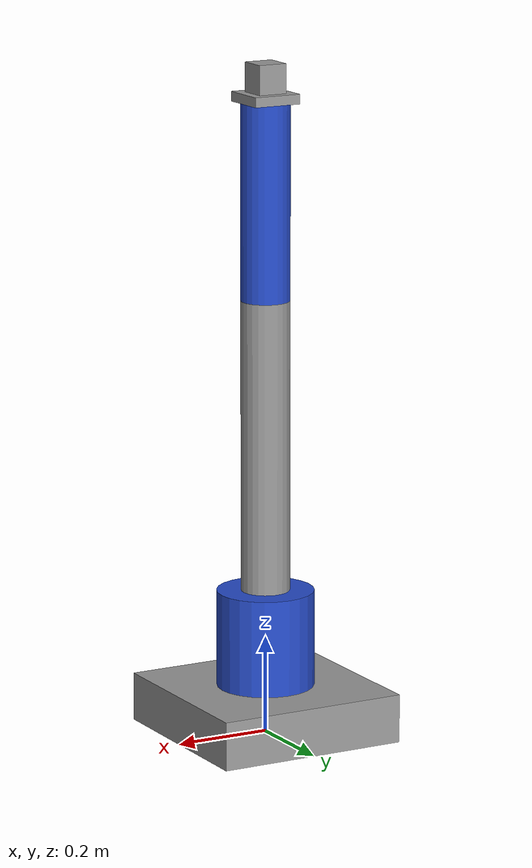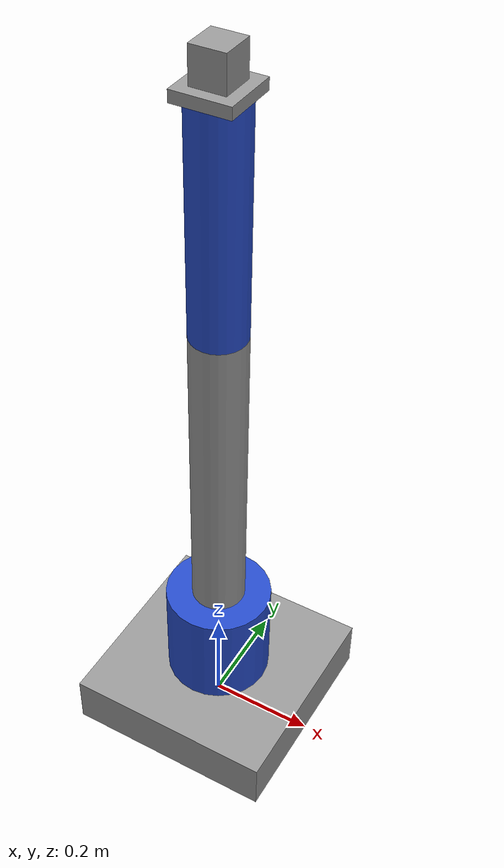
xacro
<?xml version="1.0"?>
<robot xmlns:xacro="http://www.ros.org/wiki/xacro">

  <xacro:arg name="payload_mass" default="0.0"/>

  <!-- ═══════════════ BASE ═══════════════ -->
  <link name="base_link">
    <visual>
      <geometry><box size="0.4 0.4 0.1"/></geometry>
      <origin xyz="0 0 0.05" rpy="0 0 0"/>
      <material name="grey"/>
    </visual>
    <collision>
      <geometry><box size="0.4 0.4 0.1"/></geometry>
      <origin xyz="0 0 0.05" rpy="0 0 0"/>
    </collision>
    <inertial>
      <origin xyz="0 0 0.05" rpy="0 0 0"/>
      <mass value="5.0"/>
      <inertia ixx="0.0433" ixy="0" ixz="0"
               iyy="0.0433" iyz="0" izz="0.0833"/>
    </inertial>
  </link>

  <!-- ═══════════════ SHOULDER ═══════════════ -->
  <link name="shoulder_link">
    <visual>
      <geometry><cylinder length="0.2" radius="0.1"/></geometry>
      <origin xyz="0 0 0.1" rpy="0 0 0"/>
      <material name="blue"/>
    </visual>
    <collision>
      <geometry><box size="0.2 0.2 0.2"/></geometry>
      <origin xyz="0 0 0.1" rpy="0 0 0"/>
    </collision>
    <inertial>
      <origin xyz="0 0 0.1" rpy="0 0 0"/>
      <mass value="1.5"/>
      <inertia ixx="0.0108" ixy="0" ixz="0"
               iyy="0.0108" iyz="0" izz="0.0075"/>
    </inertial>
  </link>

  <!-- ═══════════════ ARM ═══════════════ -->
  <link name="arm_link">
    <visual>
      <geometry><cylinder length="0.6" radius="0.05"/></geometry>
      <origin xyz="0 0 0.3" rpy="0 0 0"/>
      <material name="grey"/>
    </visual>
    <collision>
      <geometry><box size="0.1 0.1 0.6"/></geometry>
      <origin xyz="0 0 0.3" rpy="0 0 0"/>
    </collision>
    <inertial>
      <origin xyz="0 0 0.3" rpy="0 0 0"/>
      <mass value="1.0"/>
      <inertia ixx="0.0308" ixy="0" ixz="0"
               iyy="0.0308" iyz="0" izz="0.00125"/>
    </inertial>
  </link>

  <!-- ═══════════════ ELBOW ═══════════════ -->
  <link name="elbow_link">
    <visual>
      <geometry><cylinder length="0.4" radius="0.05"/></geometry>
      <origin xyz="0 0 0.2" rpy="0 0 0"/>
      <material name="blue"/>
    </visual>
    <collision>
      <geometry><box size="0.1 0.1 0.4"/></geometry>
      <origin xyz="0 0 0.2" rpy="0 0 0"/>
    </collision>
    <inertial>
      <origin xyz="0 0 0.2" rpy="0 0 0"/>
      <mass value="0.8"/>
      <inertia ixx="0.0109" ixy="0" ixz="0"
               iyy="0.0109" iyz="0" izz="0.001"/>
    </inertial>
  </link>

  <!-- ═══════════════ HAND ═══════════════ -->
  <link name="hand_link">
    <visual>
      <geometry><box size="0.1 0.1 0.02"/></geometry>
      <origin xyz="0 0 0.01" rpy="0 0 0"/>
      <material name="grey"/>
    </visual>
    <collision>
      <geometry><box size="0.1 0.1 0.02"/></geometry>
      <origin xyz="0 0 0.01" rpy="0 0 0"/>
    </collision>
    <inertial>
      <origin xyz="0 0 0.01" rpy="0 0 0"/>
      <mass value="0.3"/>
      <inertia ixx="0.000255" ixy="0" ixz="0"
               iyy="0.000255" iyz="0" izz="0.0005"/>
    </inertial>
  </link>

  <link name="tool_link"/>

  <!-- ═══════════════ PAYLOAD (mass changes per experiment) ═══════════════ -->
  <link name="payload_link">
    <visual>
      <geometry><box size="0.06 0.06 0.06"/></geometry>
      <origin xyz="0 0 0.03" rpy="0 0 0"/>
      <material name="grey"/>
    </visual>
    <collision>
      <geometry><box size="0.06 0.06 0.06"/></geometry>
      <origin xyz="0 0 0.03" rpy="0 0 0"/>
    </collision>
    <inertial>
      <origin xyz="0 0 0.03" rpy="0 0 0"/>
      <mass value="$(arg payload_mass)"/>
      <inertia
        ixx="${max(0.0001, $(arg payload_mass) * 0.0006)}"
        ixy="0" ixz="0"
        iyy="${max(0.0001, $(arg payload_mass) * 0.0006)}"
        iyz="0"
        izz="${max(0.0001, $(arg payload_mass) * 0.0006)}"/>
    </inertial>
  </link>

  <!-- Dummy world link — fixes KDL root inertia warning -->
  <link name="world"/>
  <joint name="world_base_joint" type="fixed">
    <parent link="world"/>
    <child link="base_link"/>
    <origin xyz="0 0 0" rpy="0 0 0"/>
  </joint>

  <!-- ═══════════════ JOINTS ═══════════════ -->

  <joint name="joint1" type="revolute">
    <parent link="base_link"/>
    <child link="shoulder_link"/>
    <origin xyz="0 0 0.1" rpy="0 0 0"/>
    <axis xyz="0 0 1"/>
    <limit effort="150.0" velocity="2.0" lower="-3.14" upper="3.14"/>
    <!-- Real-world damping: joint1 (base) supports full arm, heaviest load -->
    <!-- damping: viscous damping (Nm·s/rad), friction: Coulomb friction (Nm) -->
    <dynamics damping="1.0" friction="0.3"/>
  </joint>

  <joint name="joint2" type="revolute">
    <parent link="shoulder_link"/>
    <child link="arm_link"/>
    <origin xyz="0 0 0.2" rpy="0 0 0"/>
    <axis xyz="0 1 0"/>
    <limit effort="150.0" velocity="2.0" lower="0" upper="2.5"/>
    <!-- joint2 (shoulder): significant load, high damping for stability -->
    <dynamics damping="0.8" friction="0.25"/>
  </joint>

  <joint name="joint3" type="revolute">
    <parent link="arm_link"/>
    <child link="elbow_link"/>
    <origin xyz="0 0 0.6" rpy="0 0 0"/>
    <axis xyz="0 1 0"/>
    <limit effort="100.0" velocity="2.0" lower="0" upper="2.5"/>
    <!-- joint3 (elbow): medium load and damping -->
    <dynamics damping="0.6" friction="0.15"/>
  </joint>

  <joint name="joint4" type="revolute">
    <parent link="elbow_link"/>
    <child link="hand_link"/>
    <origin xyz="0 0 0.4" rpy="0 0 0"/>
    <axis xyz="0 0 1"/>
    <limit effort="50.0" velocity="3.0" lower="-3.14" upper="3.14"/>
    <!-- joint4 (wrist/tool): light load, minimal damping for precision -->
    <dynamics damping="0.2" friction="0.08"/>
  </joint>

  <joint name="hand_tool_joint" type="fixed">
    <parent link="hand_link"/>
    <child link="tool_link"/>
    <origin xyz="0 0 0.02" rpy="0 0 0"/>
  </joint>

  <joint name="payload_joint" type="fixed">
    <parent link="tool_link"/>
    <child link="payload_link"/>
    <origin xyz="0 0 0" rpy="0 0 0"/>
  </joint>

</robot>
